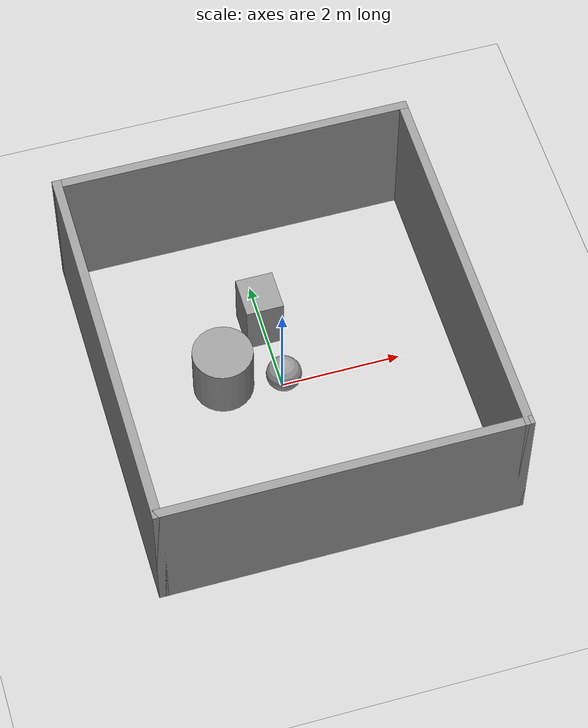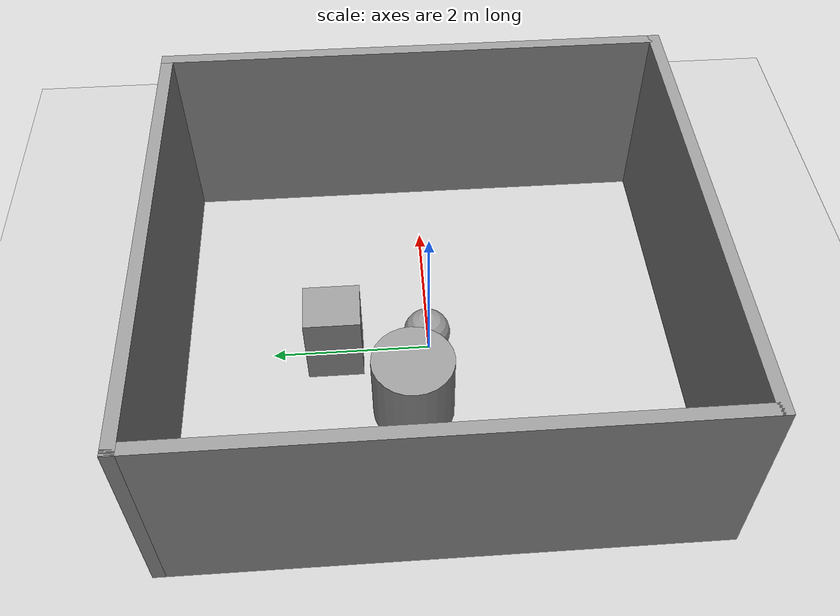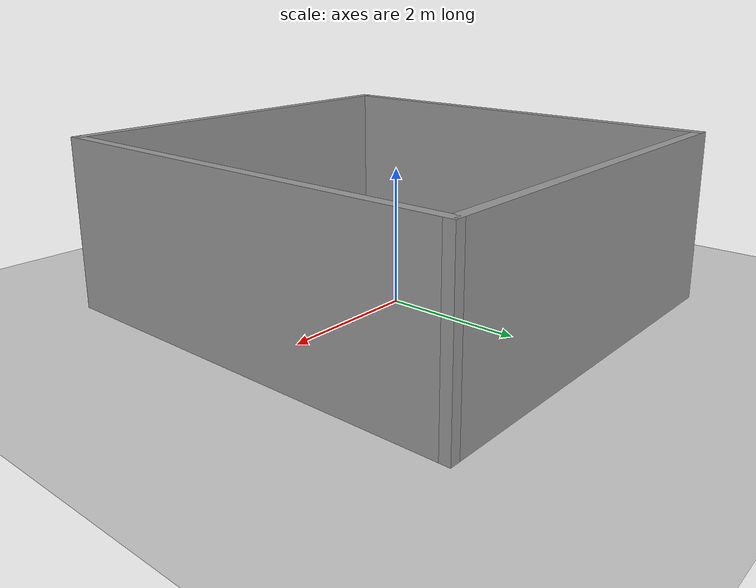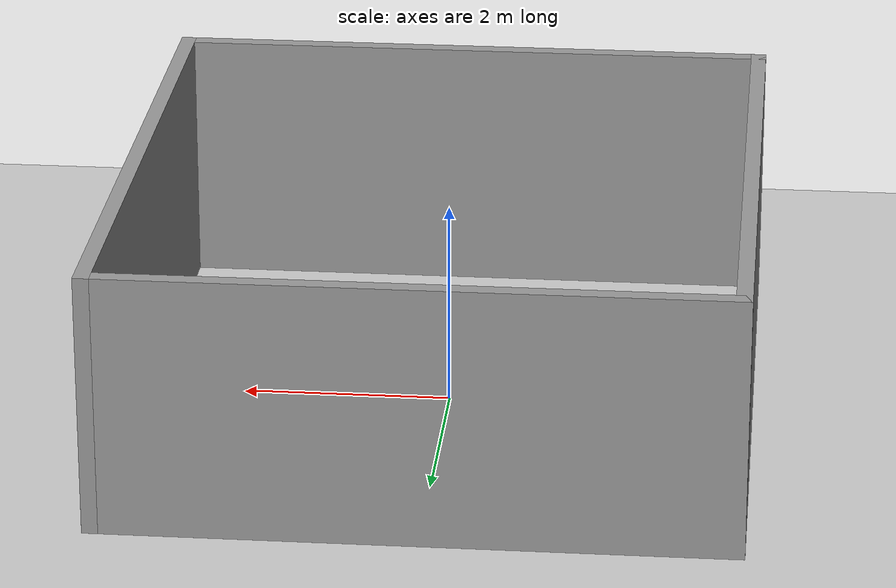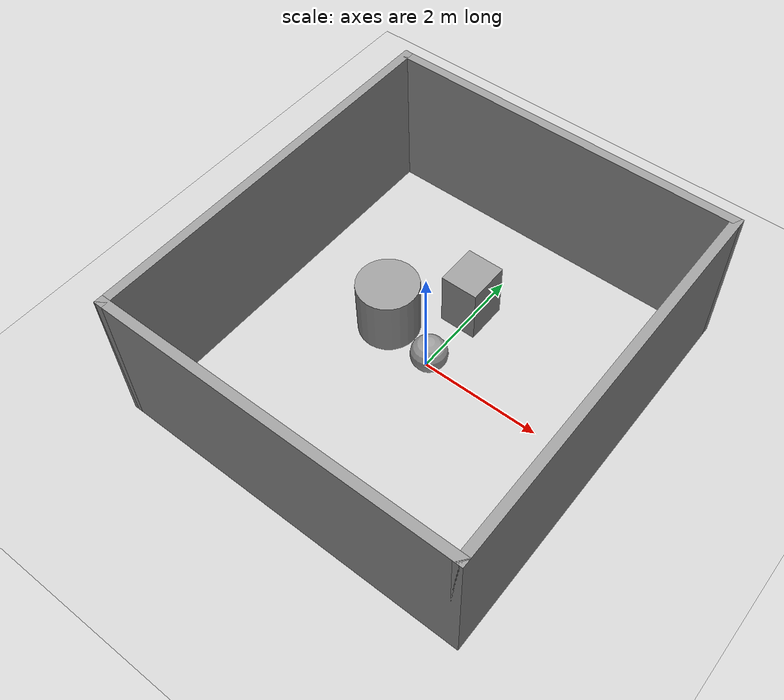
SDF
<sdf version="1.7">
 <world name="default">
  <light name="sun" type="directional">
   <pose>0 0 10 0 -0 0</pose>
   <diffuse>0.8 0.8 0.8 1</diffuse>
   <specular>0.2 0.2 0.2 1</specular>
   <attenuation>
    <range>1000</range>
    <constant>0.9</constant>
    <linear>0.01</linear>
    <quadratic>0.001</quadratic>
   </attenuation>
   <direction>-0.5 0.1 -0.9</direction>
   <spot><inner_angle>0</inner_angle><outer_angle>0</outer_angle><falloff>0</falloff></spot>
  </light>
  <model name="ground_plane">
   <static>1</static>
   <link name="link">
    <collision name="collision">
     <geometry><plane><normal>0 0 1</normal><size>100 100</size></plane></geometry>
     <surface>
      <contact><collide_bitmask>65535</collide_bitmask></contact>
      <friction><ode><mu>100</mu><mu2>50</mu2></ode></friction>
     </surface>
    </collision>
    <visual name="visual">
     <cast_shadows>0</cast_shadows>
     <geometry><plane><normal>0 0 1</normal><size>100 100</size></plane></geometry>
     <material>
      <script><uri>file://media/materials/scripts/gazebo.material</uri><name>Gazebo/Grey</name></script>
     </material>
    </visual>
   </link>
  </model>
  <gravity>0 0 -9.8</gravity>
  <magnetic_field>6e-06 2.3e-05 -4.2e-05</magnetic_field>
  <atmosphere type="adiabatic"/>
  <physics type="ode">
   <max_step_size>0.001</max_step_size>
   <real_time_factor>1</real_time_factor>
   <real_time_update_rate>1000</real_time_update_rate>
  </physics>
  <scene><ambient>0.4 0.4 0.4 1</ambient><background>0.7 0.7 0.7 1</background><shadows>1</shadows></scene>
  <spherical_coordinates>
   <surface_model>EARTH_WGS84</surface_model>
   <latitude_deg>0</latitude_deg>
   <longitude_deg>0</longitude_deg>
   <elevation>0</elevation>
   <heading_deg>0</heading_deg>
  </spherical_coordinates>
  <model name="wall_6m">
   <pose>0.055566 -0.003127 0 0 -0 0</pose>
   <link name="Wall_0">
    <collision name="Wall_0_Collision">
     <geometry><box><size>6 0.15 2.5</size></box></geometry>
     <pose>0 0 1.25 0 -0 0</pose>
    </collision>
    <visual name="Wall_0_Visual">
     <pose>0 0 1.25 0 -0 0</pose>
     <geometry><box><size>6 0.15 2.5</size></box></geometry>
     <material>
      <script><uri>file://media/materials/scripts/gazebo.material</uri><name>Gazebo/Grey</name></script>
      <ambient>1 1 1 1</ambient>
     </material>
     <meta><layer>0</layer></meta>
    </visual>
    <pose>0 -3.175 0 0 -0 0</pose>
   </link>
   <link name="Wall_1">
    <collision name="Wall_1_Collision">
     <geometry><box><size>6.5 0.15 2.5</size></box></geometry>
     <pose>0 0 1.25 0 -0 0</pose>
    </collision>
    <visual name="Wall_1_Visual">
     <pose>0 0 1.25 0 -0 0</pose>
     <geometry><box><size>6.5 0.15 2.5</size></box></geometry>
     <material>
      <script><uri>file://media/materials/scripts/gazebo.material</uri><name>Gazebo/Grey</name></script>
      <ambient>1 1 1 1</ambient>
     </material>
     <meta><layer>0</layer></meta>
    </visual>
    <pose>2.925 0 0 0 -0 1.5708</pose>
   </link>
   <link name="Wall_2">
    <collision name="Wall_2_Collision">
     <geometry><box><size>6 0.15 2.5</size></box></geometry>
     <pose>0 0 1.25 0 -0 0</pose>
    </collision>
    <visual name="Wall_2_Visual">
     <pose>0 0 1.25 0 -0 0</pose>
     <geometry><box><size>6 0.15 2.5</size></box></geometry>
     <material>
      <script><uri>file://media/materials/scripts/gazebo.material</uri><name>Gazebo/Grey</name></script>
      <ambient>1 1 1 1</ambient>
     </material>
     <meta><layer>0</layer></meta>
    </visual>
    <pose>0 3.175 0 0 -0 3.14159</pose>
   </link>
   <link name="Wall_3">
    <collision name="Wall_3_Collision">
     <geometry><box><size>6.5 0.15 2.5</size></box></geometry>
     <pose>0 0 1.25 0 -0 0</pose>
    </collision>
    <visual name="Wall_3_Visual">
     <pose>0 0 1.25 0 -0 0</pose>
     <geometry><box><size>6.5 0.15 2.5</size></box></geometry>
     <material>
      <script><uri>file://media/materials/scripts/gazebo.material</uri><name>Gazebo/Grey</name></script>
      <ambient>1 1 1 1</ambient>
     </material>
     <meta><layer>0</layer></meta>
    </visual>
    <pose>-2.925 0 0 0 -0 -1.5708</pose>
   </link>
   <static>1</static>
  </model>
  <model name="unit_sphere">
   <pose>0.031353 0.029162 0.295622 0 -0 0</pose>
   <link name="link">
    <inertial>
     <mass>1</mass>
     <inertia><ixx>0.1</ixx><ixy>0</ixy><ixz>0</ixz><iyy>0.1</iyy><iyz>0</iyz><izz>0.1</izz></inertia>
    </inertial>
    <collision name="collision"><geometry><sphere><radius>0.295622</radius></sphere></geometry></collision>
    <visual name="visual">
     <geometry><sphere><radius>0.295622</radius></sphere></geometry>
     <material>
      <script><name>Gazebo/Grey</name><uri>file://media/materials/scripts/gazebo.material</uri></script>
     </material>
    </visual>
   </link>
  </model>
  <model name="unit_box">
   <pose>-0.048523 1.20002 0.5 0 0 -1e-06</pose>
   <link name="link">
    <inertial>
     <mass>1</mass>
     <inertia>
      <ixx>0.166667</ixx>
      <ixy>0</ixy>
      <ixz>0</ixz>
      <iyy>0.166667</iyy>
      <iyz>0</iyz>
      <izz>0.166667</izz>
     </inertia>
    </inertial>
    <collision name="collision"><geometry><box><size>0.626234 0.696528 1</size></box></geometry></collision>
    <visual name="visual">
     <geometry><box><size>0.626234 0.696528 1</size></box></geometry>
     <material>
      <script><name>Gazebo/Grey</name><uri>file://media/materials/scripts/gazebo.material</uri></script>
     </material>
    </visual>
   </link>
  </model>
  <model name="unit_cylinder">
   <pose>-0.935486 0.255829 0.499997 3e-06 4e-06 -0</pose>
   <link name="link">
    <inertial>
     <mass>1</mass>
     <inertia><ixx>0.145833</ixx><ixy>0</ixy><ixz>0</ixz><iyy>0.145833</iyy><iyz>0</iyz><izz>0.125</izz></inertia>
    </inertial>
    <collision name="collision">
     <geometry><cylinder><radius>0.5</radius><length>1</length></cylinder></geometry>
    </collision>
    <visual name="visual">
     <geometry><cylinder><radius>0.5</radius><length>1</length></cylinder></geometry>
     <material>
      <script><name>Gazebo/Grey</name><uri>file://media/materials/scripts/gazebo.material</uri></script>
     </material>
    </visual>
   </link>
  </model>
 </world>
</sdf>
